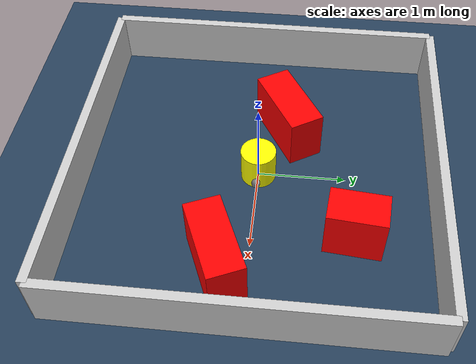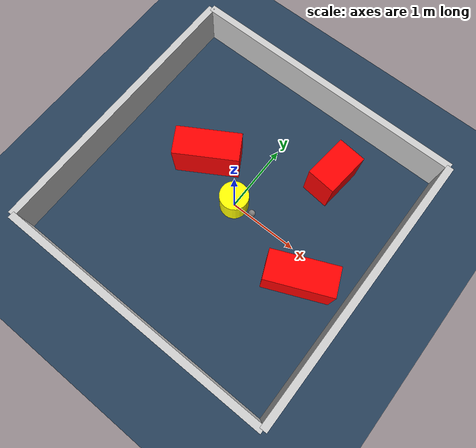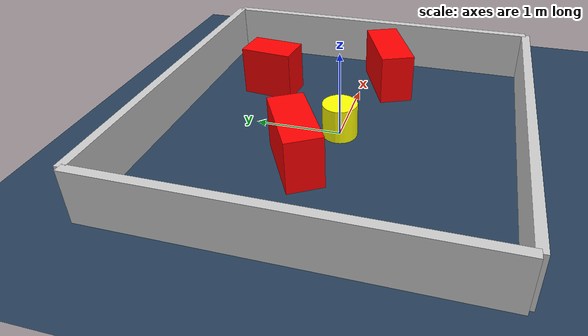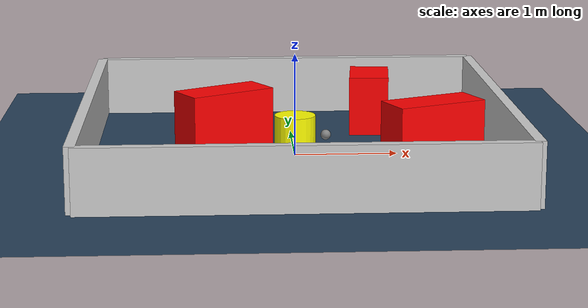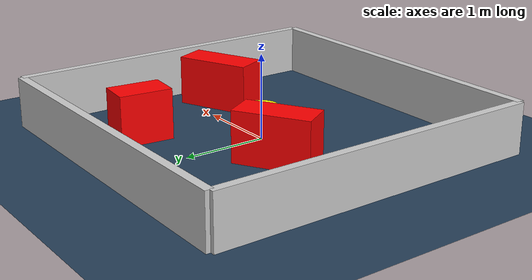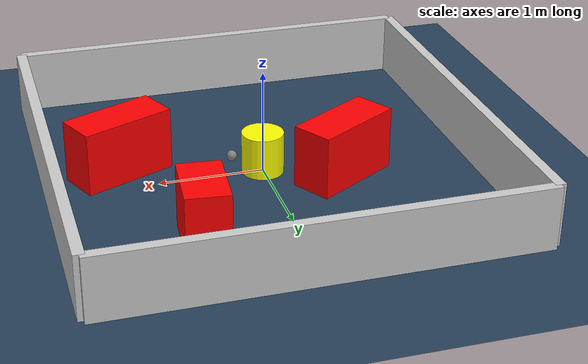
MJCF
<?xml version="1.0" ?>
<mujoco model="generated_environment">
  <option timestep="0.01" integrator="RK4" cone="elliptic"/>
  <default>
    <geom density="1"/>
  </default>
  <asset>
    <texture builtin="gradient" height="3072" rgb1="0.3 0.5 0.7" rgb2="0 0 0" type="skybox" width="512"/>
    <texture builtin="checker" height="300" mark="edge" markrgb="0.8 0.8 0.8" name="groundplane" rgb1="0.2 0.3 0.4" rgb2="0.1 0.2 0.3" type="2d" width="300"/>
    <material name="groundplane" reflectance="0.2" texrepeat="5 5" texture="groundplane" texuniform="true"/>
    <material name="robot" rgba="0.0 1.0 0.0 1"/>
  </asset>
  <worldbody>
    <light dir="0 0 -1" directional="true" pos="0 0 1.5"/>
    <geom condim="4" friction="1.0 0.005 0.001" material="groundplane" name="floor" size="0 0 0.05" type="plane"/>
    <body name="walls">
      <geom name="wall_1" condim="4" pos="-2.0 0.0 0.3" rgba="0.800000011920929 0.800000011920929 0.800000011920929 1.0" size="0.05 2.0 0.3" type="box"/>
      <geom name="wall_2" condim="4" pos="2.0 0.0 0.3" rgba="0.800000011920929 0.800000011920929 0.800000011920929 1.0" size="0.05 2.0 0.3" type="box"/>
      <geom name="wall_3" condim="4" pos="0.0 -2.0 0.3" rgba="0.800000011920929 0.800000011920929 0.800000011920929 1.0" size="2.0 0.05 0.3" type="box"/>
      <geom name="wall_4" condim="4" pos="0.0 2.0 0.3" rgba="0.800000011920929 0.800000011920929 0.800000011920929 1.0" size="2.0 0.05 0.3" type="box"/>
    </body>
    <body name="robot">
      <joint name="joint_x" type="slide" pos="0 0 0" axis="1 0 0"/>
      <joint name="joint_y" type="slide" pos="0 0 0" axis="0 1 0"/>
      <geom name="robot" type="sphere" pos="0.3 0.0 0.2" size="0.05" mass="5." friction="1.0 0.005 0.0001" condim="4" rgba="0.5 0.5 0.5 1.0"/>
      <site name="sensor_ball"/>
    </body>
    <body name="obstacle_movable_1">
      <geom name="obstacle_movable_1" condim="4" pos="0.0 0.0 0.2" euler="0 0 0.0" friction="1.0 0.005 0.001" rgba="1.0 1.0 0.0 1.0" size="0.2 0.2 0.0" type="cylinder" mass="0.1"/>
      <joint type="free"/>
    </body>
    <body name="obstacle_2_static">
      <geom name="obstacle_2_static" condim="4" pos="1.3073786237767127 -0.31368935351512084 0.3" euler="0 0 23.626352593306294" friction="1.0 0.005 0.001" rgba="1 0 0 1" size="0.45836540555960537 0.2 0.3" type="box"/>
    </body>
    <body name="obstacle_3_static">
      <geom name="obstacle_3_static" condim="4" pos="0.8282964203008345 1.1010982487131338 0.3" euler="0 0 264.35132859512976" friction="1.0 0.005 0.001" rgba="1 0 0 1" size="0.3160277462478921 0.2 0.3" type="box"/>
    </body>
    <body name="obstacle_4_static">
      <geom name="obstacle_4_static" condim="4" pos="-0.6904467005557436 0.29606003142805615 0.3" euler="0 0 30.831994987319717" friction="1.0 0.005 0.001" rgba="1 0 0 1" size="0.4499430736482583 0.2 0.3" type="box"/>
    </body>
  </worldbody>
  <actuator>
    <motor name="actuator_x" joint="joint_x" gear="1" ctrlrange="-1 1"/>
    <motor name="actuator_y" joint="joint_y" gear="1" ctrlrange="-1 1"/>
  </actuator>
</mujoco>
